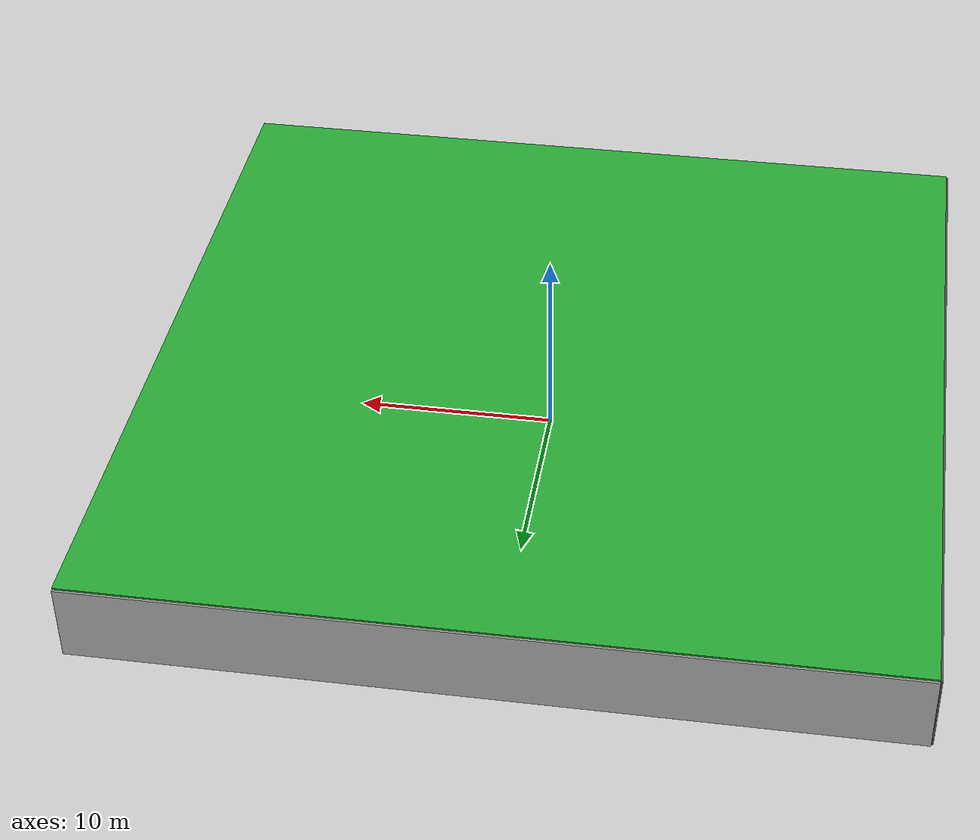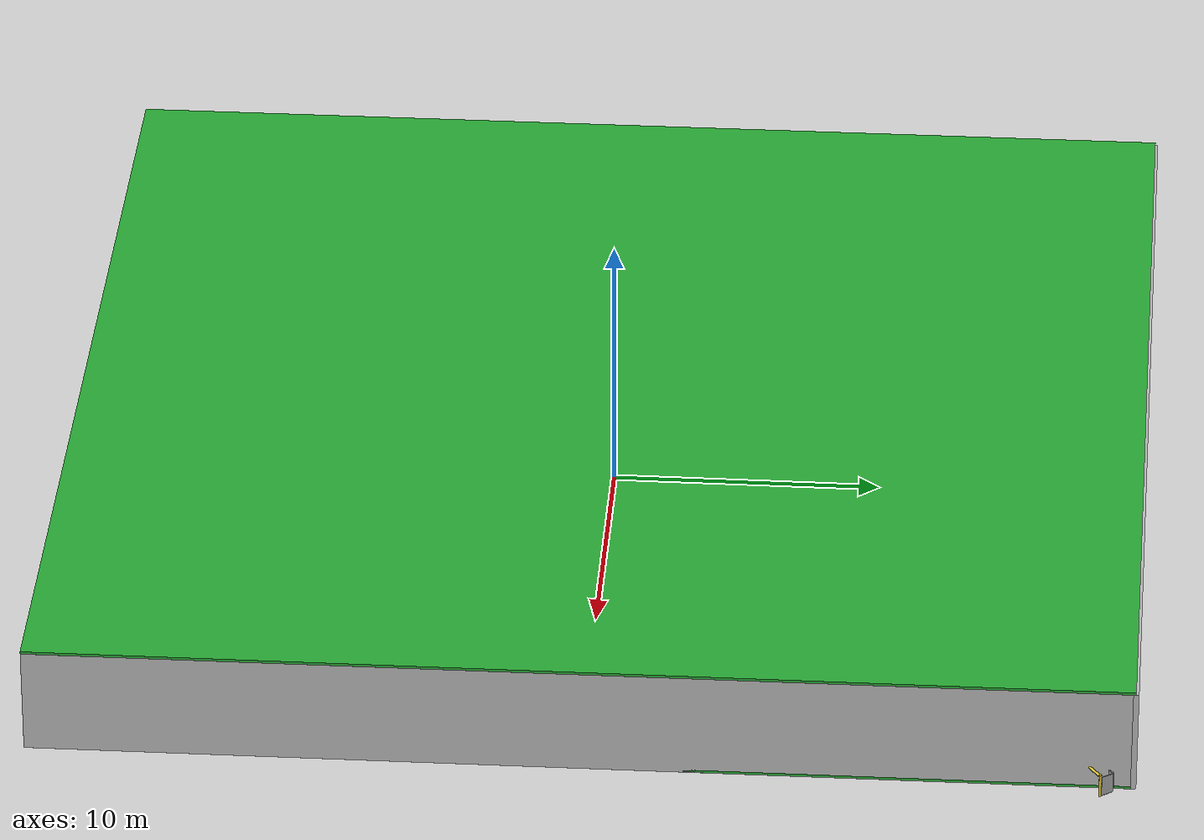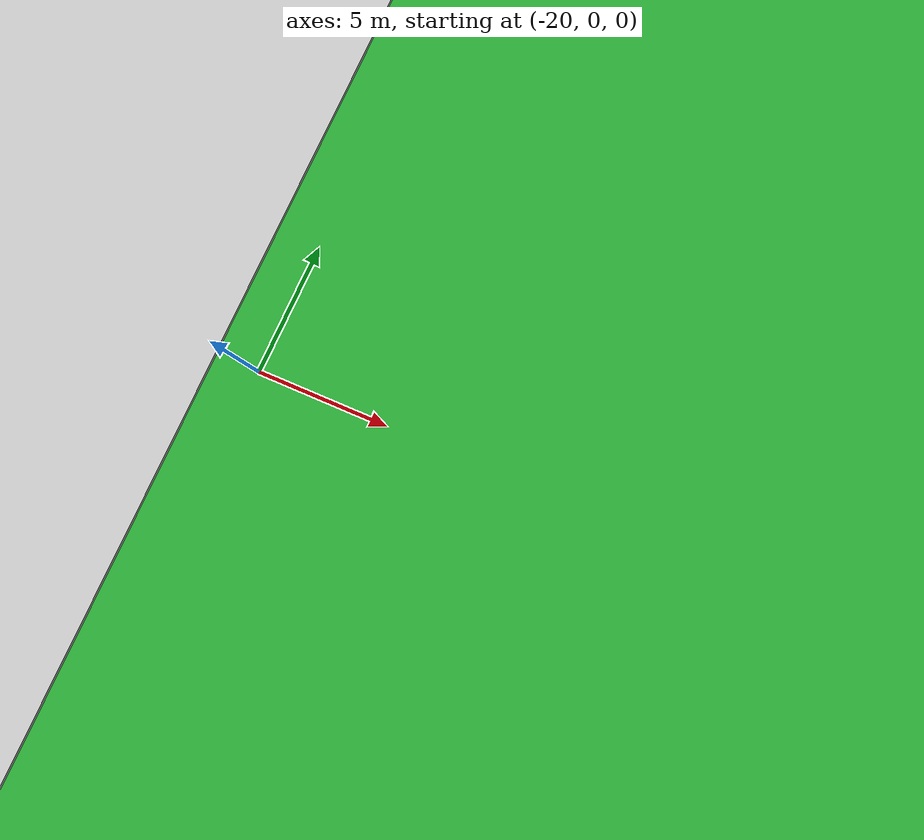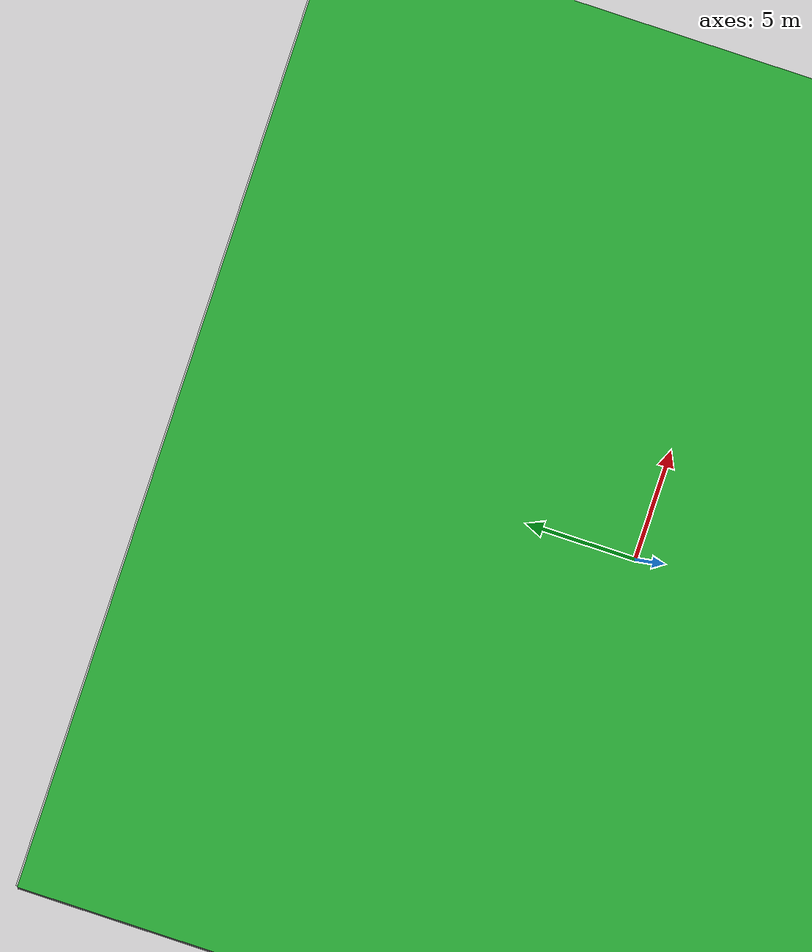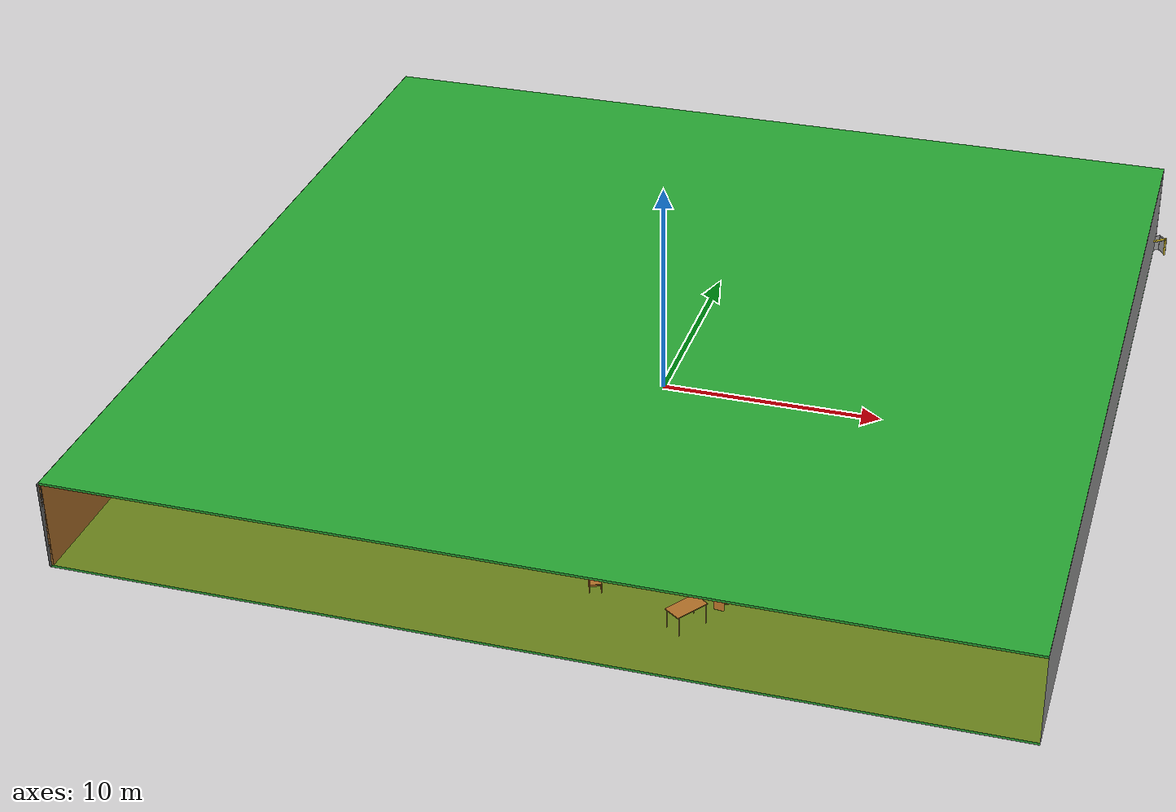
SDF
<sdf version="1.4">
 <world name="default">
  <physics type="ode">
   <max_step_size>0.001</max_step_size>
   <real_time_factor>1</real_time_factor>
   <real_time_update_rate>1000</real_time_update_rate>
   <gravity>0 0 -9.8</gravity>
  </physics>
  <scene><ambient>0.4 0.4 0.4 1</ambient><background>0.7 0.7 0.7 1</background><shadows>1</shadows></scene>
  <model name="Surrounding">
   <static>1</static>
   <link name="Ceiling">
    <collision name="Ceiling_Collision"><geometry><box><size>40 40 0.1</size></box></geometry></collision>
    <visual name="Ceiling_Visual">
     <geometry><box><size>40 40 0.1</size></box></geometry>
     <material>
      <script><uri>file://media/materials/scripts/gazebo.material</uri><name>Gazebo/Green</name></script>
     </material>
    </visual>
    <pose>0 0 4.05 0 0 0</pose>
   </link>
   <link name="Wall_South">
    <collision name="Wall_South_Collision">
     <geometry><box><size>40 0 4</size></box></geometry>
     <pose>0 0 2 0 -0 0</pose>
    </collision>
    <visual name="Wall_South_Visual">
     <pose>0 0 2 0 -0 0</pose>
     <geometry><box><size>40 0 4</size></box></geometry>
     <material>
      <script>
       <uri>file://media/materials/scripts/gazebo.material</uri>
       <name>Gazebo/OrangeTransparent</name>
      </script>
     </material>
    </visual>
    <velocity_decay><linear>0</linear><angular>0</angular></velocity_decay>
    <pose>0 -20 0 0 -0 0</pose>
   </link>
   <link name="Wall_East">
    <collision name="Wall_21_Collision">
     <geometry><box><size>40 0 4</size></box></geometry>
     <pose>0 0 2 0 -0 0</pose>
    </collision>
    <visual name="Wall_21_Visual">
     <pose>0 0 2 0 -0 0</pose>
     <geometry><box><size>40 0 4</size></box></geometry>
     <material>
      <script><uri>file://media/materials/scripts/gazebo.material</uri><name>Gazebo/LightOn</name></script>
     </material>
    </visual>
    <velocity_decay><linear>0</linear><angular>0</angular></velocity_decay>
    <pose>20 0 0 0 -0 1.5708</pose>
   </link>
   <link name="Wall_North">
    <collision name="Wall_22_Collision">
     <geometry><box><size>40 0.2 4</size></box></geometry>
     <pose>0 0 2 0 -0 0</pose>
    </collision>
    <visual name="Wall_22_Visual">
     <pose>0 0 2 0 -0 0</pose>
     <geometry><box><size>40 0.2 4</size></box></geometry>
     <material>
      <script><uri>file://media/materials/scripts/gazebo.material</uri><name>Gazebo/CloudySky</name></script>
     </material>
    </visual>
    <velocity_decay><linear>0</linear><angular>0</angular></velocity_decay>
    <pose>0 20 0 0 -0 0</pose>
   </link>
   <link name="Wall_West">
    <collision name="Wall_23_Collision">
     <geometry><box><size>40 0.2 4</size></box></geometry>
     <pose>0 0 2 0 -0 0</pose>
    </collision>
    <visual name="Wall_23_Visual">
     <pose>0 0 2 0 -0 0</pose>
     <geometry><box><size>40 0.2 4</size></box></geometry>
     <material>
      <script><uri>file://media/materials/scripts/gazebo.material</uri><name>Gazebo/DarkGrey</name></script>
     </material>
    </visual>
    <velocity_decay><linear>0</linear><angular>0</angular></velocity_decay>
    <pose>-20 0 0 0 0 -1.5708</pose>
   </link>
   <link name="Ground_link">
    <collision name="collision">
     <pose>0 0 .05 0 -0 0</pose>
     <geometry><box><size>40 40 0.1</size></box></geometry>
    </collision>
    <visual name="visual">
     <pose>0 0 .05 0 -0 0</pose>
     <geometry><box><size>40 40 0.1</size></box></geometry>
     <material>
      <script><uri>file://media/materials/scripts/gazebo.material</uri><name>Gazebo/GreenGlow</name></script>
     </material>
    </visual>
   </link>
   <static>1</static>
  </model>
  <spherical_coordinates>
   <surface_model>EARTH_WGS84</surface_model>
   <latitude_deg>0</latitude_deg>
   <longitude_deg>0</longitude_deg>
   <elevation>0</elevation>
   <heading_deg>0</heading_deg>
  </spherical_coordinates>
  <light name="lightball_0" type="diffuse">
   <diffuse>0.8 0.8 0.8 1</diffuse>
   <specular>0.2 0.2 0.2 1</specular>
   <attenuation>
    <range>100</range>
    <constant>0.7</constant>
    <linear>0.01</linear>
    <quadratic>0.001</quadratic>
   </attenuation>
   <direction>-0.5 0.1 -0.9</direction>
   <pose>-9.15285448038 -14.5820817865 1.00728889719 0 0 0</pose>
  </light>
  <light name="lightball_1" type="diffuse">
   <diffuse>0.8 0.8 0.8 1</diffuse>
   <specular>0.2 0.2 0.2 1</specular>
   <attenuation>
    <range>100</range>
    <constant>0.7</constant>
    <linear>0.01</linear>
    <quadratic>0.001</quadratic>
   </attenuation>
   <direction>-0.5 0.1 -0.9</direction>
   <pose>3.16333210655 8.4341820189 3.73268576296 0 0 0</pose>
  </light>
  <light name="lightball_2" type="diffuse">
   <diffuse>0.8 0.8 0.8 1</diffuse>
   <specular>0.2 0.2 0.2 1</specular>
   <attenuation>
    <range>100</range>
    <constant>0.7</constant>
    <linear>0.01</linear>
    <quadratic>0.001</quadratic>
   </attenuation>
   <direction>-0.5 0.1 -0.9</direction>
   <pose>-16.7262166188 -10.7389619624 1.26794945569 0 0 0</pose>
  </light>
  <light name="lightball_3" type="diffuse">
   <diffuse>0.8 0.8 0.8 1</diffuse>
   <specular>0.2 0.2 0.2 1</specular>
   <attenuation>
    <range>100</range>
    <constant>0.7</constant>
    <linear>0.01</linear>
    <quadratic>0.001</quadratic>
   </attenuation>
   <direction>-0.5 0.1 -0.9</direction>
   <pose>11.2972761853 12.2349481037 3.41122023642 0 0 0</pose>
  </light>
  <light name="lightball_4" type="diffuse">
   <diffuse>0.8 0.8 0.8 1</diffuse>
   <specular>0.2 0.2 0.2 1</specular>
   <attenuation>
    <range>100</range>
    <constant>0.7</constant>
    <linear>0.01</linear>
    <quadratic>0.001</quadratic>
   </attenuation>
   <direction>-0.5 0.1 -0.9</direction>
   <pose>8.94646025701 9.06016317001 0.672920636728 0 0 0</pose>
  </light>
  <light name="lightball_5" type="diffuse">
   <diffuse>0.8 0.8 0.8 1</diffuse>
   <specular>0.2 0.2 0.2 1</specular>
   <attenuation>
    <range>100</range>
    <constant>0.7</constant>
    <linear>0.01</linear>
    <quadratic>0.001</quadratic>
   </attenuation>
   <direction>-0.5 0.1 -0.9</direction>
   <pose>10.946516495 -19.3899948032 1.99646922829 0 0 0</pose>
  </light>
  <light name="lightball_6" type="diffuse">
   <diffuse>0.8 0.8 0.8 1</diffuse>
   <specular>0.2 0.2 0.2 1</specular>
   <attenuation>
    <range>100</range>
    <constant>0.7</constant>
    <linear>0.01</linear>
    <quadratic>0.001</quadratic>
   </attenuation>
   <direction>-0.5 0.1 -0.9</direction>
   <pose>-3.07271098516 3.98904389783 2.03782128272 0 0 0</pose>
  </light>
  <light name="lightball_7" type="diffuse">
   <diffuse>0.8 0.8 0.8 1</diffuse>
   <specular>0.2 0.2 0.2 1</specular>
   <attenuation>
    <range>100</range>
    <constant>0.7</constant>
    <linear>0.01</linear>
    <quadratic>0.001</quadratic>
   </attenuation>
   <direction>-0.5 0.1 -0.9</direction>
   <pose>-0.0046039323728 17.5332867296 2.45812572071 0 0 0</pose>
  </light>
  <light name="lightball_8" type="diffuse">
   <diffuse>0.8 0.8 0.8 1</diffuse>
   <specular>0.2 0.2 0.2 1</specular>
   <attenuation>
    <range>100</range>
    <constant>0.7</constant>
    <linear>0.01</linear>
    <quadratic>0.001</quadratic>
   </attenuation>
   <direction>-0.5 0.1 -0.9</direction>
   <pose>-19.3459458543 -12.8389091747 3.76650625569 0 0 0</pose>
  </light>
  <light name="lightball_9" type="diffuse">
   <diffuse>0.8 0.8 0.8 1</diffuse>
   <specular>0.2 0.2 0.2 1</specular>
   <attenuation>
    <range>100</range>
    <constant>0.7</constant>
    <linear>0.01</linear>
    <quadratic>0.001</quadratic>
   </attenuation>
   <direction>-0.5 0.1 -0.9</direction>
   <pose>16.0133685078 -8.23045703638 3.72279102329 0 0 0</pose>
  </light>
  <light name="lightball_10" type="diffuse">
   <diffuse>0.8 0.8 0.8 1</diffuse>
   <specular>0.2 0.2 0.2 1</specular>
   <attenuation>
    <range>100</range>
    <constant>0.7</constant>
    <linear>0.01</linear>
    <quadratic>0.001</quadratic>
   </attenuation>
   <direction>-0.5 0.1 -0.9</direction>
   <pose>-12.2436330784 -7.45941456257 1.75283624668 0 0 0</pose>
  </light>
  <light name="lightball_11" type="diffuse">
   <diffuse>0.8 0.8 0.8 1</diffuse>
   <specular>0.2 0.2 0.2 1</specular>
   <attenuation>
    <range>100</range>
    <constant>0.7</constant>
    <linear>0.01</linear>
    <quadratic>0.001</quadratic>
   </attenuation>
   <direction>-0.5 0.1 -0.9</direction>
   <pose>-6.36865206338 -14.228286877 3.85714890716 0 0 0</pose>
  </light>
  <light name="lightball_12" type="diffuse">
   <diffuse>0.8 0.8 0.8 1</diffuse>
   <specular>0.2 0.2 0.2 1</specular>
   <attenuation>
    <range>100</range>
    <constant>0.7</constant>
    <linear>0.01</linear>
    <quadratic>0.001</quadratic>
   </attenuation>
   <direction>-0.5 0.1 -0.9</direction>
   <pose>-15.4007590151 17.2791691228 2.58096390164 0 0 0</pose>
  </light>
  <light name="lightball_13" type="diffuse">
   <diffuse>0.8 0.8 0.8 1</diffuse>
   <specular>0.2 0.2 0.2 1</specular>
   <attenuation>
    <range>100</range>
    <constant>0.7</constant>
    <linear>0.01</linear>
    <quadratic>0.001</quadratic>
   </attenuation>
   <direction>-0.5 0.1 -0.9</direction>
   <pose>-0.311208337202 -2.14783749323 1.85476643826 0 0 0</pose>
  </light>
  <include><uri>model://table</uri><pose>-17.4711956636 5.53349759619 0 0 0 0.064465519343</pose></include>
  <include><uri>model://cabinet</uri><pose>-16.5533892475 11.5386866987 0 0 0 2.28569617486</pose></include>
  <include>
   <uri>model://robocup_3Dsim_goal</uri>
   <pose>-13.5258276093 7.52516598959 0 0 0 0.610210256942</pose>
  </include>
  <include>
   <uri>model://robocup_3Dsim_goal</uri>
   <pose>-11.2778149783 2.40864571648 0 0 0 1.49013799682</pose>
  </include>
  <include>
   <uri>model://textured_shapes</uri>
   <pose>-11.7295593965 14.6783991281 0 0 0 1.56491659216</pose>
  </include>
  <include><uri>model://cabinet</uri><pose>-9.48172291168 -4.62047817214 0 0 0 1.63039392316</pose></include>
  <include><uri>model://table</uri><pose>-9.28316688556 -2.88798424393 0 0 0 2.29924598847</pose></include>
  <include><uri>model://table</uri><pose>-4.45111866762 13.2363040998 0 0 0 0.453552651946</pose></include>
  <include>
   <uri>model://robocup_3Dsim_goal</uri>
   <pose>-2.40691946722 -14.5712289549 0 0 0 1.66684239857</pose>
  </include>
  <include><uri>model://table</uri><pose>-2.16585194429 -9.17982980646 0 0 0 0.290444326589</pose></include>
  <include><uri>model://cabinet</uri><pose>-3.40414271856 7.54065130169 0 0 0 2.43911609774</pose></include>
  <include>
   <uri>model://robocup_3Dsim_goal</uri>
   <pose>-2.05867111238 16.1169512046 0 0 0 2.70957683021</pose>
  </include>
  <include><uri>model://cabinet</uri><pose>1.62083922198 -15.5712253349 0 0 0 1.95696972704</pose></include>
  <include><uri>model://cabinet</uri><pose>0.0594174658949 6.51381769179 0 0 0 0.573736951235</pose></include>
  <include>
   <uri>model://robocup_3Dsim_goal</uri>
   <pose>-0.653564752648 9.35578544954 0 0 0 1.26626703197</pose>
  </include>
  <include><uri>model://cabinet</uri><pose>4.33064791474 8.86749930907 0 0 0 2.91783246694</pose></include>
  <include><uri>model://table</uri><pose>5.71417785326 -16.7719045292 0 0 0 0.958289442247</pose></include>
  <include><uri>model://cabinet</uri><pose>6.73009515558 -15.265217546 0 0 0 3.02505764453</pose></include>
  <include>
   <uri>model://robocup_3Dsim_goal</uri>
   <pose>5.74371022377 -11.0190913597 0 0 0 1.83497183212</pose>
  </include>
  <include>
   <uri>model://textured_shapes</uri>
   <pose>5.61518033829 -2.41930506463 0 0 0 0.289739741466</pose>
  </include>
  <include>
   <uri>model://construction_cone</uri>
   <pose>5.89265278055 10.2441483926 0 0 0 2.60642831957</pose>
  </include>
  <include><uri>model://table</uri><pose>7.07878430449 11.3436115619 0 0 0 2.92372504887</pose></include>
  <include>
   <uri>model://textured_shapes</uri>
   <pose>5.70538662523 15.1065132984 0 0 0 0.720577818151</pose>
  </include>
  <include><uri>model://table</uri><pose>8.86568311878 -4.88100474242 0 0 0 2.25762929224</pose></include>
  <include>
   <uri>model://textured_shapes</uri>
   <pose>8.87522326463 -2.59265149635 0 0 0 2.18664347813</pose>
  </include>
  <include>
   <uri>model://textured_shapes</uri>
   <pose>8.70928348026 3.12189867269 0 0 0 1.48591307991</pose>
  </include>
  <include><uri>model://table</uri><pose>13.1889915898 -1.42827599002 0 0 0 2.65567101909</pose></include>
  <include><uri>model://cabinet</uri><pose>12.0420041702 12.5136552897 0 0 0 1.00627365388</pose></include>
  <include>
   <uri>model://construction_cone</uri>
   <pose>19.0708807032 -10.9299120019 0 0 0 2.19510045294</pose>
  </include>
  <include>
   <uri>model://construction_cone</uri>
   <pose>17.4064768907 -6.15541570821 0 0 0 2.42736412702</pose>
  </include>
  <include><uri>model://cabinet</uri><pose>17.3058113141 0.91433385253 0 0 0 0.10178690083</pose></include>
  <include>
   <uri>model://robocup_3Dsim_goal</uri>
   <pose>19.6893116699 18.2166742194 0 0 0 2.19012714878</pose>
  </include>
 </world>
</sdf>

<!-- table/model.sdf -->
<sdf version="1.5">
  <model name="table">
    <static>true</static>
    <link name="link">
      <collision name="surface">
        <pose>0 0 1.0 0 0 0</pose>
        <geometry>
          <box>
            <size>1.5 0.8 0.03</size>
          </box>
        </geometry>
        <surface>
          <friction>
            <ode>
              <mu>0.6</mu>
              <mu2>0.6</mu2>
            </ode>
          </friction>
        </surface>
      </collision>
      <visual name="visual1">
        <pose>0 0 1.0 0 0 0</pose>
        <geometry>
          <box>
            <size>1.5 0.8 0.03</size>
          </box>
        </geometry>
        <material>
          <script>
            <uri>model://media/materials/scripts/gazebo.material</uri>
            <name>Gazebo/Wood</name>
          </script>
        </material>
      </visual>
      <collision name="front_left_leg">
        <pose>0.68 0.38 0.5 0 0 0</pose>
        <geometry>
          <cylinder>
            <radius>0.02</radius>
            <length>1.0</length>
          </cylinder>
        </geometry>
      </collision>
      <visual name="front_left_leg">
        <pose>0.68 0.38 0.5 0 0 0</pose>
        <geometry>
          <cylinder>
            <radius>0.02</radius>
            <length>1.0</length>
          </cylinder>
        </geometry>
        <material>
          <script>
            <uri>model://media/materials/scripts/gazebo.material</uri>
            <name>Gazebo/Grey</name>
          </script>
        </material>
      </visual>
      <collision name="front_right_leg">
        <pose>0.68 -0.38 0.5 0 0 0</pose>
        <geometry>
          <cylinder>
            <radius>0.02</radius>
            <length>1.0</length>
          </cylinder>
        </geometry>
      </collision>
      <visual name="front_right_leg">
        <pose>0.68 -0.38 0.5 0 0 0</pose>
        <geometry>
          <cylinder>
            <radius>0.02</radius>
            <length>1.0</length>
          </cylinder>
        </geometry>
        <material>
          <script>
            <uri>model://media/materials/scripts/gazebo.material</uri>
            <name>Gazebo/Grey</name>
          </script>
        </material>
      </visual>
      <collision name="back_right_leg">
        <pose>-0.68 -0.38 0.5 0 0 0</pose>
        <geometry>
          <cylinder>
            <radius>0.02</radius>
            <length>1.0</length>
          </cylinder>
        </geometry>
      </collision>
      <visual name="back_right_leg">
        <pose>-0.68 -0.38 0.5 0 0 0</pose>
        <geometry>
          <cylinder>
            <radius>0.02</radius>
            <length>1.0</length>
          </cylinder>
        </geometry>
        <material>
          <script>
            <uri>model://media/materials/scripts/gazebo.material</uri>
            <name>Gazebo/Grey</name>
          </script>
        </material>
      </visual>
      <collision name="back_left_leg">
        <pose>-0.68 0.38 0.5 0 0 0</pose>
        <geometry>
          <cylinder>
            <radius>0.02</radius>
            <length>1.0</length>
          </cylinder>
        </geometry>
      </collision>
      <visual name="back_left_leg">
        <pose>-0.68 0.38 0.5 0 0 0</pose>
        <geometry>
          <cylinder>
            <radius>0.02</radius>
            <length>1.0</length>
          </cylinder>
        </geometry>
        <material>
          <script>
            <uri>model://media/materials/scripts/gazebo.material</uri>
            <name>Gazebo/Grey</name>
          </script>
        </material>
      </visual>
    </link>
  </model>
</sdf>

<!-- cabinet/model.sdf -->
<sdf version="1.5">
  <model name="cabinet">
    <static>true</static>
    <link name="cabinet_bottom_plate">
      <inertial>
        <pose>0 0 -1 0 0 0</pose>
        <inertia>
          <ixx>2.050000</ixx>
          <ixy>0</ixy>
          <ixz>0</ixz>
          <iyy>2.050000</iyy>
          <iyz>0</iyz>
          <izz>2.050000</izz>
        </inertia>
        <mass>25.000000</mass>
      </inertial>
      <collision name="cabinet_bottom_plate_geom">
        <pose>0 0 0.010000 0 0 0</pose>
        <geometry>
          <box>
            <size>0.450000 0.450000 0.020000</size>
          </box>
        </geometry>
      </collision>
      <visual name="cabinet_bottom_plate_geom_visual">
        <pose>0 0 0.010000 0 0 0</pose>
        <geometry>
          <box>
            <size>0.450000 0.450000 0.020000</size>
          </box>
        </geometry>
        <material>
          <script>
            <uri>model://media/materials/scripts/gazebo.material</uri>
            <name>Gazebo/Wood</name>
          </script>
        </material>
      </visual>
      <collision name="cabinet_bottom_plate_geom_cabinet_back_plate">
        <pose>0.235000 0 0.510000 0 0 0</pose>
        <geometry>
          <box>
            <size>0.020000 0.450000 1.020000</size>
          </box>
        </geometry>
      </collision>
      <visual name="cabinet_bottom_plate_geom_cabinet_back_plate_visual">
        <pose>0.235000 0 0.510000 0 0 0</pose>
        <geometry>
          <box>
            <size>0.020000 0.450000 1.020000</size>
          </box>
        </geometry>
        <material>
          <script>
            <uri>model://media/materials/scripts/gazebo.material</uri>
            <name>Gazebo/Wood</name>
          </script>
        </material>
      </visual>
      <collision name="cabinet_bottom_plate_geom_cabinet_left_plate">
        <pose>0 0.235000 0.510000 0 0 0</pose>
        <geometry>
          <box>
            <size>0.450000 0.020000 1.020000</size>
          </box>
        </geometry>
      </collision>
      <visual name="cabinet_bottom_plate_geom_cabinet_left_plate_visual">
        <pose>0 0.235000 0.510000 0 0 0</pose>
        <geometry>
          <box>
            <size>0.450000 0.020000 1.020000</size>
          </box>
        </geometry>
        <material>
          <script>
            <uri>model://media/materials/scripts/gazebo.material</uri>
            <name>Gazebo/Wood</name>
          </script>
        </material>
      </visual>
      <collision name="cabinet_bottom_plate_geom_cabinet_middle_plate">
        <pose>0 0 0.510000 0 0 0</pose>
        <geometry>
          <box>
            <size>0.450000 0.450000 0.020000</size>
          </box>
        </geometry>
      </collision>
      <visual name="cabinet_bottom_plate_geom_cabinet_middle_plate_visual">
        <pose>0 0 0.510000 0 0 0</pose>
        <geometry>
          <box>
            <size>0.450000 0.450000 0.020000</size>
          </box>
        </geometry>
        <material>
          <script>
            <uri>model://media/materials/scripts/gazebo.material</uri>
            <name>Gazebo/Wood</name>
          </script>
        </material>
      </visual>
      <collision name="cabinet_bottom_plate_geom_cabinet_right_plate">
        <pose>0 -0.235000 0.510000 0 0 0</pose>
        <geometry>
          <box>
            <size>0.450000 0.020000 1.020000</size>
          </box>
        </geometry>
      </collision>
      <visual name="cabinet_bottom_plate_geom_cabinet_right_plate_visual">
        <pose>0 -0.235000 0.510000 0 0 0</pose>
        <geometry>
          <box>
            <size>0.450000 0.020000 1.020000</size>
          </box>
        </geometry>
        <material>
          <script>
            <uri>model://media/materials/scripts/gazebo.material</uri>
            <name>Gazebo/Wood</name>
          </script>
        </material>
      </visual>
      <collision name="cabinet_bottom_plate_geom_cabinet_top_plate">
        <pose>0 0 1.010000 0 0 0</pose>
        <geometry>
          <box>
            <size>0.450000 0.450000 0.020000</size>
          </box>
        </geometry>
      </collision>
      <visual name="cabinet_bottom_plate_geom_cabinet_top_plate_visual">
        <pose>0 0 1.010000 0 0 0</pose>
        <geometry>
          <box>
            <size>0.450000 0.450000 0.020000</size>
          </box>
        </geometry>
        <material>
          <script>
            <uri>model://media/materials/scripts/gazebo.material</uri>
            <name>Gazebo/Wood</name>
          </script>
        </material>
      </visual>
    </link>
  </model>
</sdf>

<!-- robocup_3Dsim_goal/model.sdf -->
<sdf version="1.5">
  <model name="robocup_3d_goal">
    <static>true</static>
    <link name="left_post">
      <pose>0 1.05 0.45 0 0 0</pose>
      <collision name="collision">
        <geometry>
          <cylinder>
            <radius>0.05</radius>
            <length>0.9</length>
          </cylinder>
        </geometry>
      </collision>
      <visual name="visual">
        <geometry>
          <cylinder>
            <radius>0.05</radius>
            <length>0.9</length>
          </cylinder>
        </geometry>
        <material>
          <script>
            <uri>file://media/materials/scripts/gazebo.material</uri>
            <name>Gazebo/ZincYellow</name>
          </script>
        </material>
      </visual>
    </link>
    <link name="left_support_horiz_lower">
      <pose>0.30 1.05 0.01 0 0 0</pose>
      <collision name="collision">
        <geometry>
          <box>
            <size>0.50 0.02 0.02</size>
          </box>
        </geometry>
      </collision>
      <visual name="visual">
        <geometry>
          <box>
            <size>0.50 0.02 0.02</size>
          </box>
        </geometry>
        <material>
          <script>
            <uri>file://media/materials/scripts/gazebo.material</uri>
            <name>Gazebo/White</name>
          </script>
        </material>
      </visual>
    </link>
    <link name="left_support_horiz_upper">
      <pose>0.30 1.05 0.79 0 0 0</pose>
      <collision name="collision">
        <geometry>
          <box>
            <size>0.50 0.02 0.02</size>
          </box>
        </geometry>
      </collision>
      <visual name="visual">
        <geometry>
          <box>
            <size>0.50 0.02 0.02</size>
          </box>
        </geometry>
        <material>
          <script>
            <uri>file://media/materials/scripts/gazebo.material</uri>
            <name>Gazebo/White</name>
          </script>
        </material>
      </visual>
    </link>
    <link name="left_support_vertical">
      <pose>0.56 1.05 0.4 0 1.5708 0</pose>
      <collision name="collision">
        <geometry>
          <box>
            <size>0.80 0.02 0.02</size>
          </box>
        </geometry>
      </collision>
      <visual name="visual">
        <geometry>
          <box>
            <size>0.80 0.02 0.02</size>
          </box>
        </geometry>
        <material>
          <script>
            <uri>file://media/materials/scripts/gazebo.material</uri>
            <name>Gazebo/White</name>
          </script>
        </material>
      </visual>
    </link>
    <link name="right_support_horiz_lower">
      <pose>0.30 -1.05 0.01 0 0 0</pose>
      <collision name="collision">
        <geometry>
          <box>
            <size>0.50 0.02 0.02</size>
          </box>
        </geometry>
      </collision>
      <visual name="visual">
        <geometry>
          <box>
            <size>0.50 0.02 0.02</size>
          </box>
        </geometry>
        <material>
          <script>
            <uri>file://media/materials/scripts/gazebo.material</uri>
            <name>Gazebo/White</name>
          </script>
        </material>
      </visual>
    </link>
    <link name="right_support_horiz_upper">
      <pose>0.30 -1.05 0.79 0 0 0</pose>
      <collision name="collision">
        <geometry>
          <box>
            <size>0.50 0.02 0.02</size>
          </box>
        </geometry>
      </collision>
      <visual name="visual">
        <geometry>
          <box>
            <size>0.50 0.02 0.02</size>
          </box>
        </geometry>
        <material>
          <script>
            <uri>file://media/materials/scripts/gazebo.material</uri>
            <name>Gazebo/White</name>
          </script>
        </material>
      </visual>
    </link>
    <link name="right_support_vertical">
      <pose>0.56 -1.05 0.4 0 1.5708 0</pose>
      <collision name="collision">
        <geometry>
          <box>
            <size>0.80 0.02 0.02</size>
          </box>
        </geometry>
      </collision>
      <visual name="visual">
        <geometry>
          <box>
            <size>0.80 0.02 0.02</size>
          </box>
        </geometry>
        <material>
          <script>
            <uri>file://media/materials/scripts/gazebo.material</uri>
            <name>Gazebo/White</name>
          </script>
        </material>
      </visual>
    </link>
    <link name="center_support_horiz_lower">
      <pose>0.56 0 0.01 0 1.5708 0</pose>
      <collision name="collision">
        <geometry>
          <box>
            <size>0.02 2.08 0.02</size>
          </box>
        </geometry>
      </collision>
      <visual name="visual">
        <geometry>
          <box>
            <size>0.02 2.08 0.02</size>
          </box>
        </geometry>
        <material>
          <script>
            <uri>file://media/materials/scripts/gazebo.material</uri>
            <name>Gazebo/White</name>
          </script>
        </material>
      </visual>
    </link>
    <link name="center_support_horiz_upper">
      <pose>0.56 0 0.79 0 1.5708 0</pose>
      <collision name="collision">
        <geometry>
          <box>
            <size>0.02 2.08 0.02</size>
          </box>
        </geometry>
      </collision>
      <visual name="visual">
        <geometry>
          <box>
            <size>0.02 2.08 0.02</size>
          </box>
        </geometry>
        <material>
          <script>
            <uri>file://media/materials/scripts/gazebo.material</uri>
            <name>Gazebo/White</name>
          </script>
        </material>
      </visual>
    </link>
    <link name="right_post">
      <pose>0 -1.05 0.45 0 0 0</pose>
      <collision name="collision">
        <geometry>
          <cylinder>
            <radius>0.05</radius>
            <length>0.9</length>
          </cylinder>
        </geometry>
      </collision>
      <visual name="visual">
        <geometry>
          <cylinder>
            <radius>0.05</radius>
            <length>0.9</length>
          </cylinder>
        </geometry>
        <material>
          <script>
            <uri>file://media/materials/scripts/gazebo.material</uri>
            <name>Gazebo/ZincYellow</name>
          </script>
        </material>
      </visual>
    </link>
    <link name="crossbar">
      <pose>0 0 0.85 1.57 1.57 0</pose>
      <collision name="collision">
        <geometry>
          <cylinder>
            <radius>0.05</radius>
            <length>2.0</length>
          </cylinder>
        </geometry>
      </collision>
      <visual name="visual">
        <geometry>
          <cylinder>
            <radius>0.05</radius>
            <length>2.0</length>
          </cylinder>
        </geometry>
        <material>
          <script>
            <uri>file://media/materials/scripts/gazebo.material</uri>
            <name>Gazebo/ZincYellow</name>
          </script>
        </material>
      </visual>
    </link>
    <link name="center_net">
      <pose>0.56 0 0.40 0 0 0</pose>
      <collision name="collision">
        <geometry>
          <box>
            <size>0.01 2.1 0.80</size>
          </box>
        </geometry>
      </collision>
      <visual name="visual">
        <geometry>
          <box>
            <size>0.01 2.1 0.80</size>
          </box>
        </geometry>
        <material>
          <script>
            <uri>model://../model_source/models/robocup09_spl_field/materials/scripts/</uri>
            <uri>model://../model_source/models/robocup09_spl_field/materials/textures/</uri>
            <name>RoboCup/Net</name>
          </script>
        </material>
      </visual>
    </link>
    <link name="left_net">
      <pose>0.30 1.05 0.40 0 0 0</pose>
      <collision name="collision">
        <geometry>
          <box>
            <size>0.50 0.01 0.76</size>
          </box>
        </geometry>
      </collision>
      <visual name="visual">
        <geometry>
          <box>
            <size>0.50 0.01 0.76</size>
          </box>
        </geometry>
        <material>
          <script>
            <uri>model://../model_source/models/robocup09_spl_field/materials/scripts/</uri>
            <uri>model://../model_source/models/robocup09_spl_field/materials/textures/</uri>
            <name>RoboCup/Net</name>
          </script>
        </material>
      </visual>
    </link>
    <link name="right_net">
      <pose>0.30 -1.05 0.40 0 0 0</pose>
      <collision name="collision">
        <geometry>
          <box>
            <size>0.50 0.01 0.76</size>
          </box>
        </geometry>
      </collision>
      <visual name="visual">
        <geometry>
          <box>
            <size>0.50 0.01 0.76</size>
          </box>
        </geometry>
        <material>
          <script>
            <uri>model://../model_source/models/robocup09_spl_field/materials/scripts/</uri>
            <uri>model://../model_source/models/robocup09_spl_field/materials/textures/</uri>
            <name>RoboCup/Net</name>
          </script>
        </material>
      </visual>
    </link>
  </model>
</sdf>

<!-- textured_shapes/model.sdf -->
<sdf version="1.6">
  <model name="textured_shapes">
    <pose>0 0 0.5 0 0 0</pose>
    <link name="box">
      <pose>0 -1.5 0 0 0 0</pose>
      <collision name="collision">
        <geometry>
          <box>
            <size>1 1 1</size>
          </box>
        </geometry>
      </collision>
      <visual name="visual">
        <geometry>
          <box>
            <size>1 1 1</size>
          </box>
        </geometry>
        <material>
          <script>
            <uri>model://../model_source/models/textured_shapes/materials/scripts</uri>
            <uri>model://../model_source/models/textured_shapes/materials/textures</uri>
            <name>TexturedShape/Squares</name>
          </script>
        </material>
      </visual>
    </link>
    <link name="sphere">
      <collision name="collision">
        <geometry>
          <sphere>
            <radius>0.5</radius>
          </sphere>
        </geometry>
      </collision>
      <visual name="visual">
        <geometry>
          <sphere>
            <radius>0.5</radius>
          </sphere>
        </geometry>
        <material>
          <script>
            <uri>model://../model_source/models/textured_shapes/materials/scripts</uri>
            <uri>model://../model_source/models/textured_shapes/materials/textures</uri>
            <name>TexturedShape/Squares</name>
          </script>
        </material>
      </visual>
    </link>
    <link name="cylinder">
      <pose>0 1.5 0 0 0 0</pose>
      <collision name="collision">
        <geometry>
          <cylinder>
            <radius>0.5</radius>
            <length>1</length>
          </cylinder>
        </geometry>
      </collision>
      <visual name="visual">
        <geometry>
          <cylinder>
            <radius>0.5</radius>
            <length>1</length>
          </cylinder>
        </geometry>
        <material>
          <script>
            <uri>model://../model_source/models/textured_shapes/materials/scripts</uri>
            <uri>model://../model_source/models/textured_shapes/materials/textures</uri>
            <name>TexturedShape/Squares</name>
          </script>
        </material>
      </visual>
    </link>
  </model>
</sdf>

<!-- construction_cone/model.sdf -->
<sdf version="1.5">
  <model name="Construction Cone">
    <link name="link">
      <collision name="collision">
        <geometry>
          <mesh>
            <scale>10 10 10</scale>
            <uri>file://isr-testbed/construction_cone/meshes/construction_cone.dae</uri>
          </mesh>
        </geometry>
      </collision>
      <visual name="visual">
        <geometry>
          <mesh>
            <scale>10 10 10</scale>
            <uri>file://isr-testbed/construction_cone/meshes/construction_cone.dae</uri>
          </mesh>
        </geometry>
      </visual>
    </link>
  </model>
</sdf>
